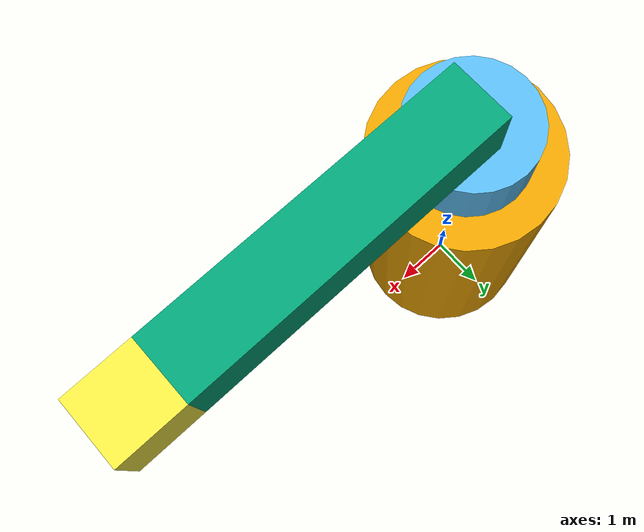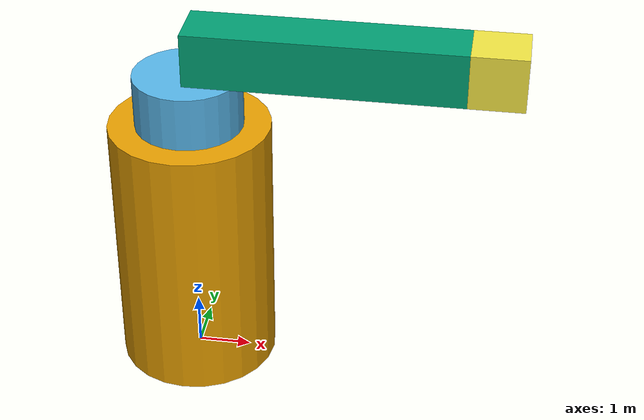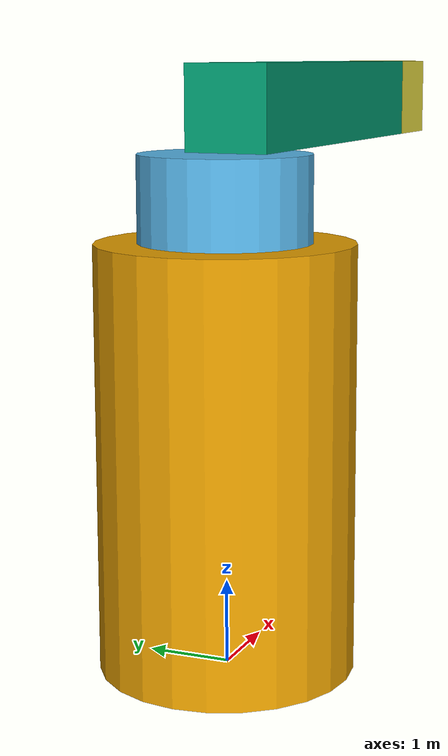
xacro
<?xml version="1.0" ?>
<robot name = "pr_robot" xmlns:xacro="http://www.ros.org/wiki/xacro">

  <!-- BGN - Include -->
  <xacro:include filename="$(find my_pr_robot)/urdf/links_joints.xacro"/>
  <!-- END - Include -->

    <my_cylinder_link_red name = "base_link"
                      origin_rpy = "0 0 0" origin_xyz = "0 0 2.5"
                      radius = "1.5" length = "5"/>

    <my_joint name = "joint1_base_link_to_link1"
              type = "prismatic"
              origin_rpy = "0 0 0" origin_xyz = "0 0 1"
              parent = "base_link" child = "link1"
              axis_xyz = "0 0 1"
              limit_e = "1000" limit_l = "0" limit_u = "4.0" limit_v = "0.5"/>

    <my_cylinder_link_green name = "link1"
                      origin_rpy = "0 0 0" origin_xyz = "0 0 2.5"
                      radius = "1" length = "5"/>

    <my_joint name = "joint2_link1_to_link2"
              type = "revolute"
              origin_rpy = "0 0 0" origin_xyz = "0 0 0"
              parent = "link1" child = "link2"
              axis_xyz = "0 0 1"
              limit_e = "1000" limit_l = "-3.14" limit_u = "3.14" limit_v = "1.0"/>

    <my_box_link_red name = "link2"
                 origin_rpy = "0 0 0" origin_xyz = "2.5 0 5.5"
                 size = "5 1 1"/>

    <my_joint name = "joint3_link2_to_hand"
              type = "fixed"
              origin_rpy = "0 0 0" origin_xyz = "0 0 0"
              parent = "link2" child = "hand"
              axis_xyz = "0 0 0"
              limit_e = "0" limit_l = "0" limit_u = "0" limit_v = "0"/>

    <my_box_link_green name = "hand"
                 origin_rpy = "0 0 0" origin_xyz = "5.5 0 5.5"
                 size = "1 1 1"/>
</robot>

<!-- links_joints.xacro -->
<robot xmlns:xacro ="http://www.ros.org.wiki/xacro">

  <xacro:macro name="my_joint" params="name type origin_rpy origin_xyz parent child axis_xyz limit_e limit_l limit_u limit_v">
    <joint name="${name}" type="${type}">
      <origin rpy="${origin_rpy}" xyz="${origin_xyz}" />
      <parent link="${parent}" />
      <child link="${child}" />
      <axis xyz="${axis_xyz}" />
      <limit effort="${limit_e}" lower="${limit_l}" upper="${limit_u}" velocity="${limit_v}" />
    </joint>
  </xacro:macro>

  <xacro:macro name="my_box_link_red" params="name origin_rpy origin_xyz size">
    <link name = "${name}">
    <visual>
      <origin rpy = "${origin_rpy}" xyz = "${origin_xyz}"/>
      <geometry>
        <box size = "${size}"/>
      </geometry>
    </visual>
    <collision>
      <origin rpy = "${origin_rpy}" xyz = "${origin_xyz}"/>
      <geometry>
        <box size = "${size}"/>
      </geometry>
    </collision>
      <material name="red">
        <color rgba="0.8 0.0 0.0 1.0"/>
      </material>
    </link>
  </xacro:macro>

  <xacro:macro name="my_box_link_green" params="name origin_rpy origin_xyz size">
    <link name = "${name}">
    <visual>
      <origin rpy = "${origin_rpy}" xyz = "${origin_xyz}"/>
      <geometry>
        <box size = "${size}"/>
      </geometry>
    </visual>
    <collision>
      <origin rpy = "${origin_rpy}" xyz = "${origin_xyz}"/>
      <geometry>
        <box size = "${size}"/>
      </geometry>
    </collision>
      <material name="green">
        <color rgba="0.0 0.8 0.0 1.0"/>
      </material>
    </link>
  </xacro:macro>

  <xacro:macro name="my_cylinder_link_red" params="name origin_rpy origin_xyz radius length">
    <link name="${name}">
      <collision>
        <origin rpy="${origin_rpy}" xyz="${origin_xyz}" />
        <geometry>
          <cylinder radius="${radius}" length="${length}" />
        </geometry>
      </collision>
      <visual>
        <origin rpy="${origin_rpy}" xyz="${origin_xyz}" />
        <geometry>
          <cylinder radius="${radius}" length="${length}" />
        </geometry>
      </visual>
      <material name="red">
        <color rgba="0.8 0.0 0.0 1.0"/>
      </material>
    </link>
  </xacro:macro>

  <xacro:macro name="my_cylinder_link_green" params="name origin_rpy origin_xyz radius length">
    <link name="${name}">
      <collision>
        <origin rpy="${origin_rpy}" xyz="${origin_xyz}" />
        <geometry>
          <cylinder radius="${radius}" length="${length}" />
        </geometry>
      </collision>
      <visual>
        <origin rpy="${origin_rpy}" xyz="${origin_xyz}" />
        <geometry>
          <cylinder radius="${radius}" length="${length}" />
        </geometry>
      </visual>
      <material name="green">
        <color rgba="0.0 0.8 0.0 1.0"/>
      </material>
    </link>
  </xacro:macro>

</robot>
